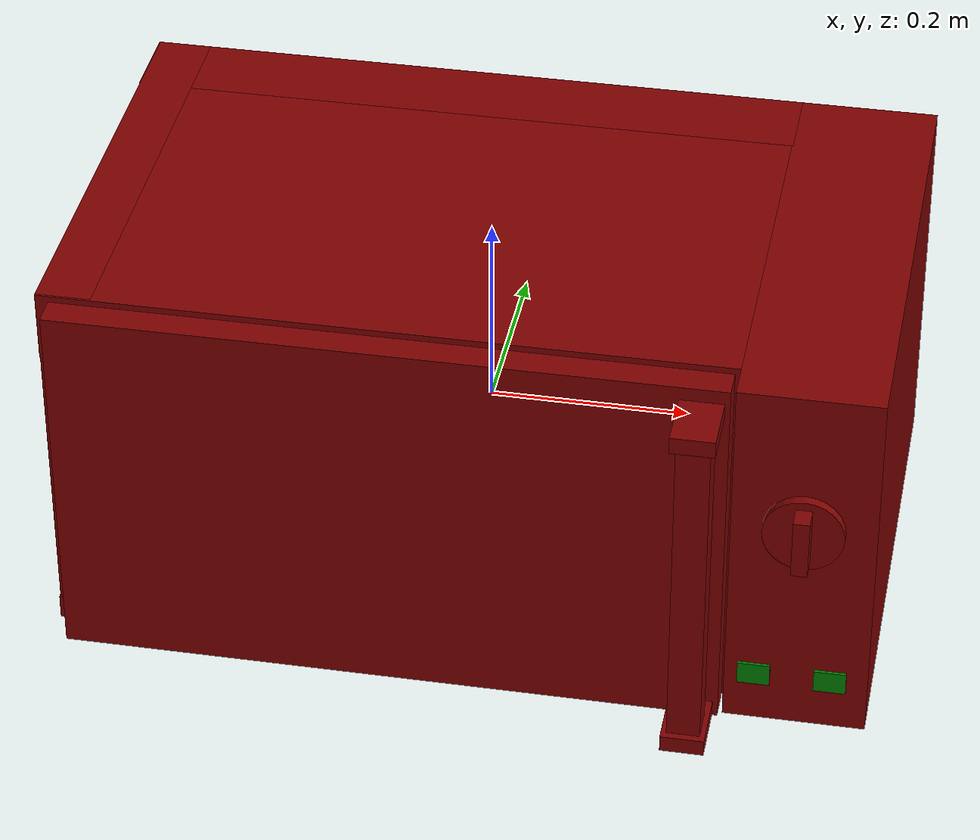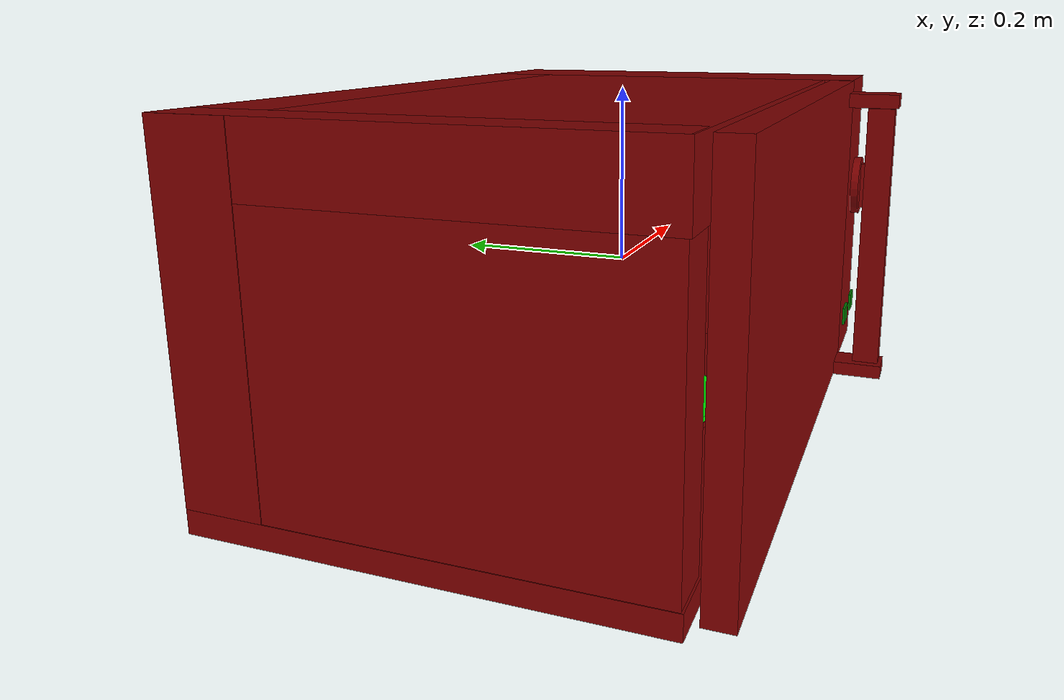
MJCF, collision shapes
<?xml version='1.0' encoding='UTF-8'?>
<mujoco model="model">
  <option timestep="0.002" gravity="0.0 0.0 -9.81"/>
  <compiler angle="radian"/>
  <asset>
    <mesh file="visuals/door.obj" name="door_vis"/>
    <mesh file="visuals/door_Clear.obj" name="door_Clear_vis"/>
    <mesh file="visuals/Body001.obj" name="Body001_vis"/>
    <mesh file="visuals/Disc001.obj" name="Disc001_vis"/>
    <mesh file="visuals/Knob001.obj" name="Knob001_vis"/>
    <texture file="visuals/T_BC001.png" name="Body001_material" type="2d"/>
    <material name="Body001_material" rgba="1 1 1 1.0" texture="Body001_material" shininess="0.341421377658844" specular="1.5"/>
    <texture file="visuals/T_BC001.png" name="door_material" type="2d"/>
    <material name="door_material" rgba="1 1 1 1.0" texture="door_material" shininess="0.0658844" specular="2"/>
    <material name="door_Clear_material" rgba="0.11236722767353058 0.11236722767353058 0.11236722767353058 0.800000011920929" shininess="0.141421377658844" specular="0.3103448502657381"/>
    <texture file="visuals/T_BC001.png" name="Disc001_material" type="2d"/>
    <material name="Disc001_material" rgba="1 1 1 1.0" texture="Disc001_material" shininess="0.141421377658844" specular="0.3103448502657381"/>
    <texture file="visuals/T_BC001.png" name="Knob001_material" type="2d"/>
    <material name="Knob001_material" rgba="1 1 1 1.0" texture="Knob001_material" shininess="0.141421377658844" specular="0.3103448502657381"/>
  </asset>
  <default>
    <default class="visual">
      <geom conaffinity="0" contype="0" group="1" type="mesh"/>
    </default>
    <default class="collision">
      <geom group="0" rgba="0.5 0 0 0.5"/>
    </default>
    <default class="spawn">
      <geom group="0" rgba="1 1 1 0.5" contype="0" conaffinity="0"/>
      <site group="0" rgba="1 1 1 0.5"/>
    </default>
    <default class="region">
      <geom group="1" conaffinity="0" contype="0" rgba="0 1 0 0"/>
    </default>
  </default>
  <worldbody>
    <body>
      <body name="object">
        <geom class="collision" type="cylinder" pos="-0.0391693077981472 0.02113538235425949 -0.15826988220214844" size="0.14779333770275116 0.0027771969325840473" quat="3.1391647326017846e-07 0.0 0.0 1.0" name="tray" rgba="0 1 0 0.5"/>
        <geom class="collision" type="box" pos="0.3755680024623871 -0.23376648128032684 -0.13126420974731445" size="0.01584424264729023 0.001510168076492846 0.011846786364912987" quat="1.0 0.0 0.0 0.0" name="start_button" rgba="0.0 0.5 0 0.5"/>
        <geom class="collision" type="box" pos="0.3009970784187317 -0.23376648128032684 -0.13126420974731445" size="0.01584424450993538 0.0015101683093234897 0.011846787296235561" quat="1.0 0.0 0.0 0.0" name="stop_button" rgba="0.0 0.5 0 0.5"/>
        <geom mesh="Body001_vis" type="mesh" solimp="0.998 0.998 0.001" solref="0.001 1" friction="0.95 0.3 0.1" class="visual" material="Body001_material"/>
        <geom class="collision" type="box" pos="-0.3839205205440521 0.05112439766526222 0.0028500081971287727" size="0.02740524709224701 0.24033373594284058 0.19518771767616272" quat="1.0 0.0 0.0 0.0"/>
        <geom class="collision" type="box" pos="-0.010768723674118519 0.05005568265914917 -0.18522103130817413" size="0.40128886699676514 0.24140238761901855 0.012805180624127388" quat="1.0 0.0 0.0 0.0"/>
        <geom class="collision" type="box" pos="-0.06958562880754471 0.24871546030044556 0.011362670920789242" size="0.3424718677997589 0.042742080986499786 0.18667498230934143" quat="1.0 0.0 0.0 0.0"/>
        <geom class="collision" type="box" pos="-0.06922034174203873 0.05005565285682678 0.16124887764453888" size="0.3421064615249634 0.2414022833108902 0.036788251250982285" quat="1.0 0.0 0.0 0.0"/>
        <geom class="collision" type="box" pos="0.341838002204895 0.031337201595306396 0.003968843724578619" size="0.07021826505661011 0.260120689868927 0.19406870007514954" quat="1.0 0.0 0.0 0.0"/>
        <geom class="collision" type="box" pos="0.26129674911499023 0.047424882650375366 -0.018278922885656357" size="0.013440924696624279 0.2440326064825058 0.14706720411777496" quat="1.0 0.0 0.0 0.0"/>
        <body name="door">
          <joint axis="0.0 0.0 1.0" pos="-0.391532301902771 -0.213157057762146 -4.470348358154297e-08" limited="true" name="microjoint" range="-1.5707963267948966 0.0" type="hinge" damping="1" frictionloss="1" armature=".01" stiffness="0.05"/>
          <geom mesh="door_vis" type="mesh" solimp="0.998 0.998 0.001" solref="0.001 1" friction="0.95 0.3 0.1" class="visual" material="door_material"/>
          <geom class="collision" type="box" pos="-0.06400305032730103 -0.2153390794992447 0.002430651104077697" size="0.3310309648513794 0.015124491415917873 0.1956060826778412" quat="1.0 0.0 0.0 0.0" name="door_main"/>
          <geom class="collision" type="box" pos="-0.053986866027116776 -0.2216595858335495 -0.013482654467225075" size="0.3206219971179962 0.008662238717079163 0.1498737335205078" quat="1.0 0.0 0.0 0.0"/>
          <geom class="collision" type="box" pos="0.24019040167331696 -0.258909672498703 0.17548546195030212" size="0.021651705726981163 0.03267640620470047 0.00866370927542448" quat="1.0 0.0 0.0 0.0"/>
          <geom class="collision" type="box" pos="0.24019040167331696 -0.258909672498703 -0.1847771257162094" size="0.021651705726981163 0.03267640620470047 0.00866370927542448" quat="1.0 0.0 0.0 0.0"/>
          <geom class="collision" type="box" pos="0.2405511438846588 -0.27057817578315735 -0.003977129235863686" size="0.01651320978999138 0.016474008560180664 0.16983821988105774" quat="1.0 0.0 0.0 0.0" name="door_handle_main"/>
          <body name="door_Clear">
            <geom mesh="door_Clear_vis" type="mesh" solimp="0.998 0.998 0.001" solref="0.001 1" friction="0.95 0.3 0.1" class="visual" material="door_Clear_material"/>
            <geom class="collision" type="box" pos="-0.053986866027116776 -0.2216595858335495 -0.013482654467225075" size="0.3206219971179962 0.008662238717079163 0.1498737335205078" quat="1.0 0.0 0.0 0.0"/>
          </body>
        </body>
        <body name="Disc001">
          <joint axis="0.0 0.0 1.0" pos="-0.039169371128082275 0.021135345101356506 -0.1665833592414856" limited="false" name="Disc001_joint" range="0 360" type="hinge" damping="1" frictionloss="1" armature=".01" stiffness="0.05"/>
          <geom mesh="Disc001_vis" type="mesh" solimp="0.998 0.998 0.001" solref="0.001 1" friction="0.95 0.3 0.1" class="visual" material="Disc001_material"/>
          <geom class="collision" type="cylinder" pos="-0.0391693077981472 0.02113538235425949 -0.16574373841285706" size="0.14779379963874817 0.0030854970682412386" quat="3.1391647326017846e-07 0.0 0.0 1.0"/>
        </body>
        <body name="Knob001">
          <joint axis="0.0 1.0 0.0" pos="0.34208521246910095 -0.2450312376022339 0.048211582005023956" limited="true" name="Knob001_joint" range="0.0 4.886921905584122" type="hinge" damping="0.05" frictionloss="0.75" armature="0.5"/>
          <geom mesh="Knob001_vis" type="mesh" solimp="0.998 0.998 0.001" solref="0.001 1" friction="0.95 0.3 0.1" class="visual" material="Knob001_material"/>
          <geom class="collision" type="cylinder" pos="0.34218356013298035 -0.23551145195960999 0.048070527613162994" size="0.03966139256954193 0.005041208583861589" quat="0.7071067094802856 0.70710688829422 0.0 0.0" friction="100 0.5 0.01"/>
          <geom class="collision" type="box" pos="0.341948002576828 -0.251702219247818 0.048187047243118286" size="0.008028197102248669 0.011217853054404259 0.030576683580875397" quat="1.0 0.0 0.0 0.0" friction="100 0.5 0.01"/>
        </body>
        <geom class="region" name="reg_int" type="box" pos="-0.0669436901807785 0.007215127348899841 -0.018270619213581085" size="0.2847461978197098 0.19412311708927155 0.13822198456525803"/>
        <geom class="region" name="reg_main" type="box" pos="-5.960464477539063e-08 0.030496865510940552 5.386769771575928e-06" size="0.4130560884475708 0.26196048951148987 0.19903160429000855"/>
      <geom class="region" name="reg_tray" type="cylinder" pos="-0.0391693077981472 0.02113538235425949 -0.017770659958943724" size="0.14779333770275116 0.13672202531062067"/></body>
    </body>
  </worldbody>
  <actuator>
    <motor name="microjoint_actuator" joint="microjoint" gear="10"/>
    <motor name="Disc001_joint_actuator" joint="Disc001_joint" gear="10"/>
    <motor name="Knob001_joint_actuator" joint="Knob001_joint" gear="10"/>
  </actuator>
</mujoco>
